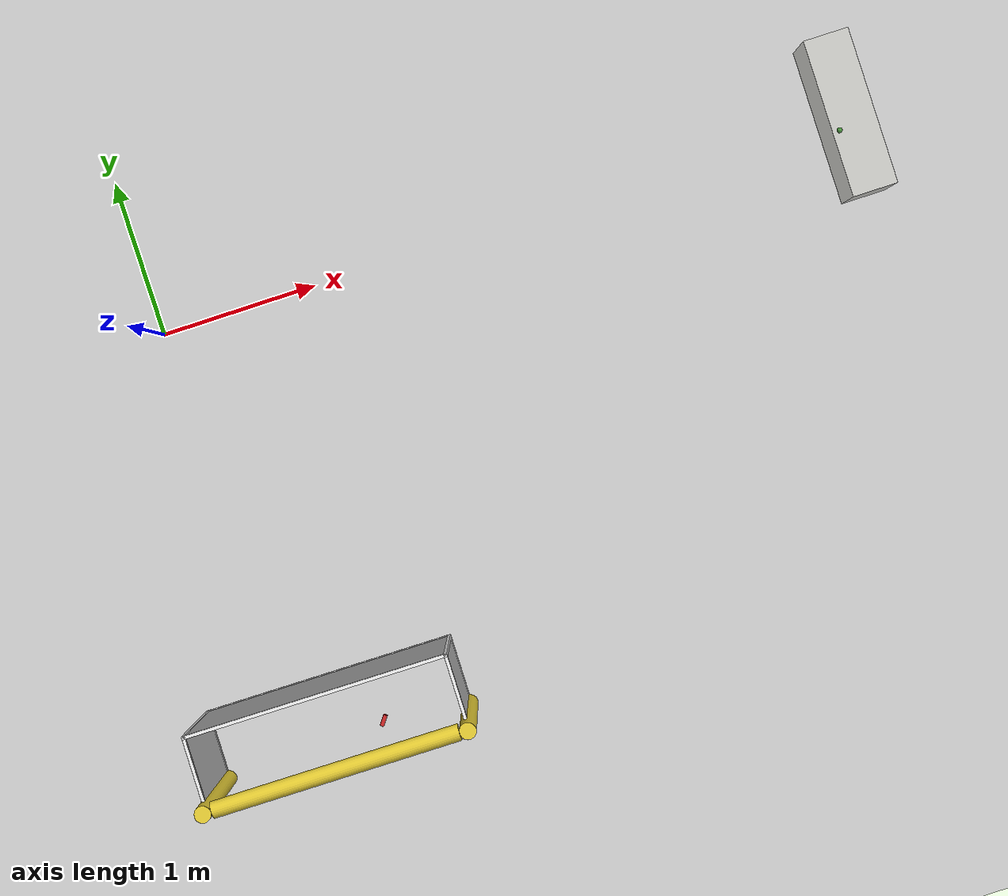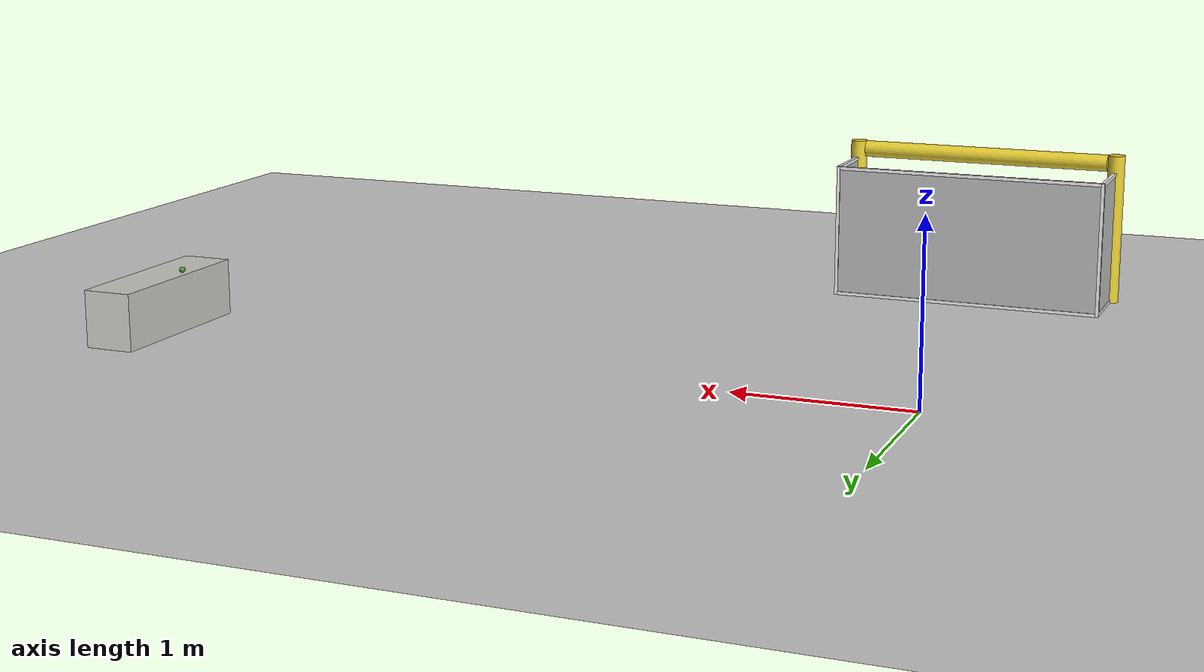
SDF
<sdf version="1.6">
 <world name="default">
  <model name="ground_plane">
   <static>1</static>
   <link name="link">
    <collision name="collision">
     <geometry><plane><normal>0 0 1</normal><size>100 100</size></plane></geometry>
     <surface>
      <contact><collide_bitmask>65535</collide_bitmask></contact>
      <friction><ode><mu>100</mu><mu2>50</mu2></ode></friction>
     </surface>
    </collision>
    <visual name="visual">
     <cast_shadows>0</cast_shadows>
     <geometry><plane><normal>0 0 1</normal><size>100 100</size></plane></geometry>
     <material>
      <script><uri>file://media/materials/scripts/gazebo.material</uri><name>Gazebo/Grey</name></script>
     </material>
    </visual>
   </link>
  </model>
  <model name="RoboCup 2014 SPL Goal_0">
   <static>1</static>
   <link name="left_post">
    <pose>0 0.8 0.45 0 -0 0</pose>
    <collision name="collision">
     <geometry><cylinder><radius>0.05</radius><length>0.9</length></cylinder></geometry>
    </collision>
    <visual name="visual">
     <geometry><cylinder><radius>0.05</radius><length>0.9</length></cylinder></geometry>
     <material>
      <script><uri>file://media/materials/scripts/gazebo.material</uri><name>Gazebo/ZincYellow</name></script>
     </material>
    </visual>
   </link>
   <link name="left_support_horiz_lower">
    <pose>0.24 0.8 0.01 0 -0 0</pose>
    <collision name="collision"><geometry><box><size>0.38 0.02 0.02</size></box></geometry></collision>
    <visual name="visual">
     <geometry><box><size>0.38 0.02 0.02</size></box></geometry>
     <material>
      <script><uri>file://media/materials/scripts/gazebo.material</uri><name>Gazebo/White</name></script>
     </material>
    </visual>
   </link>
   <link name="left_support_horiz_upper">
    <pose>0.24 0.8 0.79 0 -0 0</pose>
    <collision name="collision"><geometry><box><size>0.38 0.02 0.02</size></box></geometry></collision>
    <visual name="visual">
     <geometry><box><size>0.38 0.02 0.02</size></box></geometry>
     <material>
      <script><uri>file://media/materials/scripts/gazebo.material</uri><name>Gazebo/White</name></script>
     </material>
    </visual>
   </link>
   <link name="left_support_vertical">
    <pose>0.44 0.8 0.4 3.14159 1.57079 3.14159</pose>
    <collision name="collision"><geometry><box><size>0.8 0.02 0.02</size></box></geometry></collision>
    <visual name="visual">
     <geometry><box><size>0.8 0.02 0.02</size></box></geometry>
     <material>
      <script><uri>file://media/materials/scripts/gazebo.material</uri><name>Gazebo/White</name></script>
     </material>
    </visual>
   </link>
   <link name="right_support_horiz_lower">
    <pose>0.24 -0.8 0.01 0 -0 0</pose>
    <collision name="collision"><geometry><box><size>0.38 0.02 0.02</size></box></geometry></collision>
    <visual name="visual">
     <geometry><box><size>0.38 0.02 0.02</size></box></geometry>
     <material>
      <script><uri>file://media/materials/scripts/gazebo.material</uri><name>Gazebo/White</name></script>
     </material>
    </visual>
   </link>
   <link name="right_support_horiz_upper">
    <pose>0.24 -0.8 0.79 0 -0 0</pose>
    <collision name="collision"><geometry><box><size>0.38 0.02 0.02</size></box></geometry></collision>
    <visual name="visual">
     <geometry><box><size>0.38 0.02 0.02</size></box></geometry>
     <material>
      <script><uri>file://media/materials/scripts/gazebo.material</uri><name>Gazebo/White</name></script>
     </material>
    </visual>
   </link>
   <link name="right_support_vertical">
    <pose>0.44 -0.8 0.4 3.14159 1.57079 3.14159</pose>
    <collision name="collision"><geometry><box><size>0.8 0.02 0.02</size></box></geometry></collision>
    <visual name="visual">
     <geometry><box><size>0.8 0.02 0.02</size></box></geometry>
     <material>
      <script><uri>file://media/materials/scripts/gazebo.material</uri><name>Gazebo/White</name></script>
     </material>
    </visual>
   </link>
   <link name="center_support_horiz_lower">
    <pose>0.44 0 0.01 3.14159 1.57079 3.14159</pose>
    <collision name="collision"><geometry><box><size>0.02 1.58 0.02</size></box></geometry></collision>
    <visual name="visual">
     <geometry><box><size>0.02 1.58 0.02</size></box></geometry>
     <material>
      <script><uri>file://media/materials/scripts/gazebo.material</uri><name>Gazebo/White</name></script>
     </material>
    </visual>
   </link>
   <link name="center_support_horiz_upper">
    <pose>0.44 0 0.79 3.14159 1.57079 3.14159</pose>
    <collision name="collision"><geometry><box><size>0.02 1.58 0.02</size></box></geometry></collision>
    <visual name="visual">
     <geometry><box><size>0.02 1.58 0.02</size></box></geometry>
     <material>
      <script><uri>file://media/materials/scripts/gazebo.material</uri><name>Gazebo/White</name></script>
     </material>
    </visual>
   </link>
   <link name="right_post">
    <pose>0 -0.8 0.45 0 -0 0</pose>
    <collision name="collision">
     <geometry><cylinder><radius>0.05</radius><length>0.9</length></cylinder></geometry>
    </collision>
    <visual name="visual">
     <geometry><cylinder><radius>0.05</radius><length>0.9</length></cylinder></geometry>
     <material>
      <script><uri>file://media/materials/scripts/gazebo.material</uri><name>Gazebo/ZincYellow</name></script>
     </material>
    </visual>
   </link>
   <link name="crossbar">
    <pose>0 0 0.85 1.57 1.57 0</pose>
    <collision name="collision">
     <geometry><cylinder><radius>0.05</radius><length>1.5</length></cylinder></geometry>
    </collision>
    <visual name="visual">
     <geometry><cylinder><radius>0.05</radius><length>1.5</length></cylinder></geometry>
     <material>
      <script><uri>file://media/materials/scripts/gazebo.material</uri><name>Gazebo/ZincYellow</name></script>
     </material>
    </visual>
   </link>
   <link name="center_net">
    <pose>0.44 0 0.4 0 -0 0</pose>
    <collision name="collision"><geometry><box><size>0.01 1.6 0.8</size></box></geometry></collision>
    <visual name="visual">
     <geometry><box><size>0.01 1.6 0.8</size></box></geometry>
     <material>
      <script>
       <uri>model://robocup09_spl_field/materials/scripts/</uri>
       <uri>model://robocup09_spl_field/materials/textures/</uri>
       <name>RoboCup/Net</name>
      </script>
     </material>
    </visual>
   </link>
   <link name="left_net">
    <pose>0.24 0.8 0.4 0 -0 0</pose>
    <collision name="collision"><geometry><box><size>0.38 0.01 0.76</size></box></geometry></collision>
    <visual name="visual">
     <geometry><box><size>0.38 0.01 0.76</size></box></geometry>
     <material>
      <script>
       <uri>model://robocup09_spl_field/materials/scripts/</uri>
       <uri>model://robocup09_spl_field/materials/textures/</uri>
       <name>RoboCup/Net</name>
      </script>
     </material>
    </visual>
   </link>
   <link name="right_net">
    <pose>0.24 -0.8 0.4 0 -0 0</pose>
    <collision name="collision"><geometry><box><size>0.38 0.01 0.76</size></box></geometry></collision>
    <visual name="visual">
     <geometry><box><size>0.38 0.01 0.76</size></box></geometry>
     <material>
      <script>
       <uri>model://robocup09_spl_field/materials/scripts/</uri>
       <uri>model://robocup09_spl_field/materials/textures/</uri>
       <name>RoboCup/Net</name>
      </script>
     </material>
    </visual>
   </link>
   <pose>0.317115 -2.80323 -0 0 -0 1.56097</pose>
  </model>
  <model name="grasp_cylinder_2_1">
   <link name="link">
    <inertial>
     <mass>0.05</mass>
     <inertia>
      <ixx>2.297e-05</ixx>
      <ixy>0</ixy>
      <ixz>0</ixz>
      <iyy>2.297e-05</iyy>
      <iyz>0</iyz>
      <izz>4.31e-06</izz>
     </inertia>
    </inertial>
    <visual name="visual">
     <geometry><cylinder><radius>0.0131252</radius><length>0.0706744</length></cylinder></geometry>
     <material>
      <script><name>Gazebo/Red</name><uri>file://media/materials/scripts/gazebo.material</uri></script>
      <shader type="vertex"><normal_map>__default__</normal_map></shader>
      <ambient>1 0 0 1</ambient>
      <diffuse>0.7 0.7 0.7 1</diffuse>
      <specular>0.01 0.01 0.01 1</specular>
      <emissive>0 0 0 1</emissive>
     </material>
    </visual>
    <collision name="collision">
     <geometry><cylinder><radius>0.013125</radius><length>0.070674</length></cylinder></geometry>
     <surface>
      <friction>
       <ode><mu>100</mu><mu2>100</mu2><fdir1>0 0 0</fdir1><slip1>0</slip1><slip2>0</slip2></ode>
       <torsional>
        <coefficient>1</coefficient>
        <patch_radius>0</patch_radius>
        <surface_radius>0</surface_radius>
        <use_patch_radius>1</use_patch_radius>
        <ode><slip>0</slip></ode>
       </torsional>
      </friction>
      <bounce><restitution_coefficient>0</restitution_coefficient><threshold>1e+06</threshold></bounce>
      <contact>
       <collide_without_contact>0</collide_without_contact>
       <collide_without_contact_bitmask>1</collide_without_contact_bitmask>
       <collide_bitmask>1</collide_bitmask>
       <ode>
        <soft_cfm>0</soft_cfm>
        <soft_erp>0.2</soft_erp>
        <kp>1e+13</kp>
        <kd>1</kd>
        <max_vel>0.01</max_vel>
        <min_depth>0</min_depth>
       </ode>
       <bullet>
        <split_impulse>1</split_impulse>
        <split_impulse_penetration_threshold>-0.01</split_impulse_penetration_threshold>
        <soft_cfm>0</soft_cfm>
        <soft_erp>0.2</soft_erp>
        <kp>1e+13</kp>
        <kd>1</kd>
       </bullet>
      </contact>
     </surface>
    </collision>
   </link>
   <static>0</static>
   <pose>0.605401 -2.69386 0.340054 -1.5708 -1.55665 2.50847</pose>
  </model>
  <model name="small_table">
   <link name="link">
    <inertial>
     <mass>1000</mass>
     <inertia><ixx>92.2402</ixx><ixy>0</ixy><ixz>0</ixz><iyy>15.7852</iyy><iyz>0</iyz><izz>90.2116</izz></inertia>
    </inertial>
    <visual name="visual">
     <geometry><box><size>0.287297 1 0.326929</size></box></geometry>
     <material>
      <script><name>Gazebo/CeilingTiled</name><uri>file://media/materials/scripts/gazebo.material</uri></script>
      <shader type="pixel"><normal_map>__default__</normal_map></shader>
      <ambient>0.7 0.7 0.7 1</ambient>
      <diffuse>0.9 0.9 0.9 1</diffuse>
      <specular>0.01 0.01 0.01 1</specular>
      <emissive>0 0 0 1</emissive>
     </material>
    </visual>
    <collision name="collision">
     <geometry><box><size>0.287297 1 0.326929</size></box></geometry>
     <surface>
      <friction>
       <ode><mu>1000</mu><mu2>1000</mu2><fdir1>0 0 0</fdir1><slip1>0</slip1><slip2>0</slip2></ode>
       <torsional>
        <coefficient>1</coefficient>
        <patch_radius>0</patch_radius>
        <surface_radius>0</surface_radius>
        <use_patch_radius>1</use_patch_radius>
        <ode><slip>0</slip></ode>
       </torsional>
      </friction>
      <bounce><restitution_coefficient>0</restitution_coefficient><threshold>1e+06</threshold></bounce>
      <contact>
       <collide_without_contact>0</collide_without_contact>
       <collide_without_contact_bitmask>1</collide_without_contact_bitmask>
       <collide_bitmask>1</collide_bitmask>
       <ode>
        <soft_cfm>0</soft_cfm>
        <soft_erp>0.2</soft_erp>
        <kp>1e+13</kp>
        <kd>1</kd>
        <max_vel>0.01</max_vel>
        <min_depth>0</min_depth>
       </ode>
       <bullet>
        <split_impulse>1</split_impulse>
        <split_impulse_penetration_threshold>-0.01</split_impulse_penetration_threshold>
        <soft_cfm>0</soft_cfm>
        <soft_erp>0.2</soft_erp>
        <kp>1e+13</kp>
        <kd>1</kd>
       </bullet>
      </contact>
     </surface>
    </collision>
   </link>
   <static>0</static>
   <pose>4.47331 -0.040772 0.163464 0 -0 -0.003397</pose>
  </model>
  <model name="Grasp_Sphere">
   <link name="link">
    <inertial>
     <mass>0.00274403</mass>
     <inertia>
      <ixx>3.12874e-07</ixx>
      <ixy>0</ixy>
      <ixz>0</ixz>
      <iyy>3.12874e-07</iyy>
      <iyz>0</iyz>
      <izz>3.12874e-07</izz>
     </inertia>
    </inertial>
    <visual name="visual">
     <geometry><sphere><radius>0.0168833</radius></sphere></geometry>
     <material>
      <script><name>Gazebo/Grass</name><uri>file://media/materials/scripts/gazebo.material</uri></script>
      <shader type="vertex"><normal_map>__default__</normal_map></shader>
      <ambient>1 1 1 1</ambient>
      <diffuse>1 1 1 1</diffuse>
      <specular>0 0 0 1</specular>
      <emissive>0 0 0 1</emissive>
     </material>
    </visual>
    <collision name="collision">
     <geometry><sphere><radius>0.016883</radius></sphere></geometry>
     <surface>
      <friction>
       <ode><mu>1000</mu><mu2>1000</mu2><fdir1>0 0 0</fdir1><slip1>0</slip1><slip2>0</slip2></ode>
       <torsional>
        <coefficient>1</coefficient>
        <patch_radius>0</patch_radius>
        <surface_radius>0</surface_radius>
        <use_patch_radius>1</use_patch_radius>
        <ode><slip>0</slip></ode>
       </torsional>
      </friction>
      <bounce><restitution_coefficient>0</restitution_coefficient><threshold>1e+06</threshold></bounce>
      <contact>
       <collide_without_contact>0</collide_without_contact>
       <collide_without_contact_bitmask>1</collide_without_contact_bitmask>
       <collide_bitmask>1</collide_bitmask>
       <ode>
        <soft_cfm>0</soft_cfm>
        <soft_erp>0.2</soft_erp>
        <kp>1e+13</kp>
        <kd>1</kd>
        <max_vel>0.01</max_vel>
        <min_depth>0</min_depth>
       </ode>
       <bullet>
        <split_impulse>1</split_impulse>
        <split_impulse_penetration_threshold>-0.01</split_impulse_penetration_threshold>
        <soft_cfm>0</soft_cfm>
        <soft_erp>0.2</soft_erp>
        <kp>1e+13</kp>
        <kd>1</kd>
       </bullet>
      </contact>
     </surface>
    </collision>
   </link>
   <static>0</static>
   <pose>4.37016 -0.128842 0.343812 -6e-06 -1.6e-05 0</pose>
  </model>
 </world>
</sdf>
